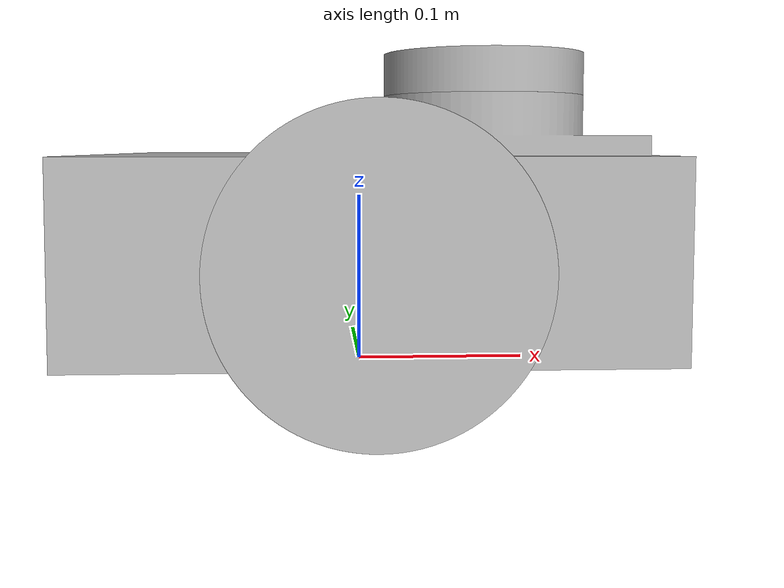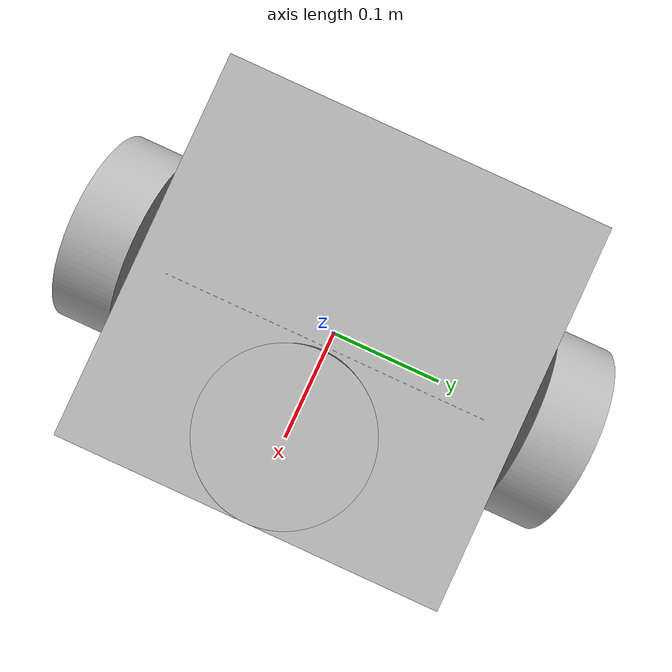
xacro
<?xml version="1.0" ?>
<robot name="2wd" xmlns:xacro="http://www.ros.org/wiki/xacro">

<xacro:include filename="$(find 2wd_description)/urdf/materials.xacro" />
<xacro:include filename="$(find 2wd_description)/urdf/2wd.trans" />
<xacro:include filename="$(find 2wd_description)/urdf/2wd.gazebo" />
<link name="base_link">
  <inertial>
    <origin xyz="0.004634566801090757 3.021367063891959e-17 0.07867868292683855" rpy="0 0 0"/>
    <mass value="10.21062970230382"/>
    <inertia ixx="0.0841" iyy="0.086707" izz="0.149703" ixy="0.0" iyz="0.0" ixz="-0.002822"/>
  </inertial>
  <visual>
    <origin xyz="0 0 0" rpy="0 0 0"/>
    <geometry>
      <mesh filename="package://2wd_description/meshes/base_link.stl" scale="0.001 0.001 0.001"/>
    </geometry>
    <material name="silver"/>
  </visual>
  <collision>
    <origin xyz="0 0 0" rpy="0 0 0"/>
    <geometry>
      <mesh filename="package://2wd_description/meshes/base_link.stl" scale="0.001 0.001 0.001"/>
    </geometry>
  </collision>
</link>

<link name="right_wheel_1">
  <inertial>
    <origin xyz="0.0 -0.022499999999999992 1.3877787807814457e-17" rpy="0 0 0"/>
    <mass value="0.739550545609122"/>
    <inertia ixx="0.001165" iyy="0.00208" izz="0.001165" ixy="0.0" iyz="0.0" ixz="0.0"/>
  </inertial>
  <visual>
    <origin xyz="-0.0 0.15 -0.075" rpy="0 0 0"/>
    <geometry>
      <mesh filename="package://2wd_description/meshes/right_wheel_1.stl" scale="0.001 0.001 0.001"/>
    </geometry>
    <material name="silver"/>
  </visual>
  <collision>
    <origin xyz="-0.0 0.15 -0.075" rpy="0 0 0"/>
    <geometry>
      <mesh filename="package://2wd_description/meshes/right_wheel_1.stl" scale="0.001 0.001 0.001"/>
    </geometry>
  </collision>
</link>

<link name="left_wheel_1">
  <inertial>
    <origin xyz="0.0 0.022499999999999992 1.3877787807814457e-17" rpy="0 0 0"/>
    <mass value="0.739550545609122"/>
    <inertia ixx="0.001165" iyy="0.00208" izz="0.001165" ixy="0.0" iyz="-0.0" ixz="0.0"/>
  </inertial>
  <visual>
    <origin xyz="-0.0 -0.15 -0.075" rpy="0 0 0"/>
    <geometry>
      <mesh filename="package://2wd_description/meshes/left_wheel_1.stl" scale="0.001 0.001 0.001"/>
    </geometry>
    <material name="silver"/>
  </visual>
  <collision>
    <origin xyz="-0.0 -0.15 -0.075" rpy="0 0 0"/>
    <geometry>
      <mesh filename="package://2wd_description/meshes/left_wheel_1.stl" scale="0.001 0.001 0.001"/>
    </geometry>
  </collision>
</link>

<link name="lidar_1">
  <inertial>
    <origin xyz="0.0 -8.041698750169483e-18 0.012499999999999983" rpy="0 0 0"/>
    <mass value="2.219535209761189"/>
    <inertia ixx="0.002113" iyy="0.002113" izz="0.003995" ixy="-0.0" iyz="-0.0" ixz="0.0"/>
  </inertial>
  <visual>
    <origin xyz="-0.075 -0.0 -0.16" rpy="0 0 0"/>
    <geometry>
      <mesh filename="package://2wd_description/meshes/lidar_1.stl" scale="0.001 0.001 0.001"/>
    </geometry>
    <material name="silver"/>
  </visual>
  <collision>
    <origin xyz="-0.075 -0.0 -0.16" rpy="0 0 0"/>
    <geometry>
      <mesh filename="package://2wd_description/meshes/lidar_1.stl" scale="0.001 0.001 0.001"/>
    </geometry>
  </collision>
</link>

<joint name="Revolute 1" type="continuous">
  <origin xyz="0.0 -0.15 0.075" rpy="0 0 0"/>
  <parent link="base_link"/>
  <child link="right_wheel_1"/>
  <axis xyz="0.0 -1.0 0.0"/>
</joint>

<joint name="Revolute 2" type="continuous">
  <origin xyz="0.0 0.15 0.075" rpy="0 0 0"/>
  <parent link="base_link"/>
  <child link="left_wheel_1"/>
  <axis xyz="0.0 1.0 0.0"/>
</joint>

<joint name="Rigid 3" type="fixed">
  <origin xyz="0.075 0.0 0.16" rpy="0 0 0"/>
  <parent link="base_link"/>
  <child link="lidar_1"/>
</joint>

</robot>

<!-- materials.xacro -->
<robot name="2wd" xmlns:xacro="http://www.ros.org/wiki/xacro" >

<material name="silver">
  <color rgba="0.700 0.700 0.700 1.000"/>
</material>

</robot>

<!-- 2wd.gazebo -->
<robot name="2wd" xmlns:xacro="http://www.ros.org/wiki/xacro" >

<xacro:property name="body_color" value="Gazebo/Silver" />

<gazebo>
  <plugin name="control" filename="libgazebo_ros_control.so"/>
</gazebo>
<gazebo reference="base_link">
  <material>${body_color}</material>
  <mu1>0.2</mu1>
  <mu2>0.2</mu2>
  <selfCollide>true</selfCollide>
  <gravity>true</gravity>
</gazebo>

<gazebo reference="right_wheel_1">
  <material>${body_color}</material>
  <mu1>0.2</mu1>
  <mu2>0.2</mu2>
  <selfCollide>true</selfCollide>
</gazebo>

<gazebo reference="left_wheel_1">
  <material>${body_color}</material>
  <mu1>0.2</mu1>
  <mu2>0.2</mu2>
  <selfCollide>true</selfCollide>
</gazebo>

<gazebo reference="lidar_1">
  <material>${body_color}</material>
  <mu1>0.2</mu1>
  <mu2>0.2</mu2>
  <selfCollide>true</selfCollide>
</gazebo>

</robot>
